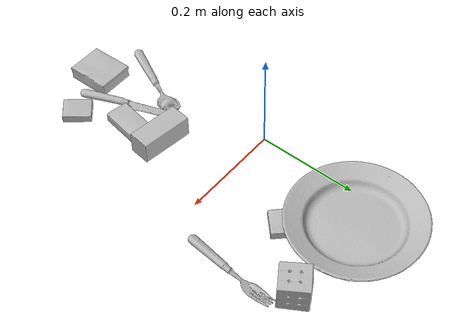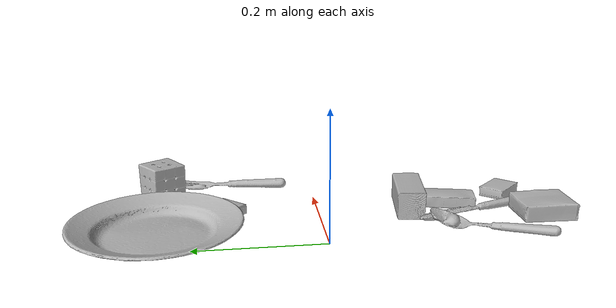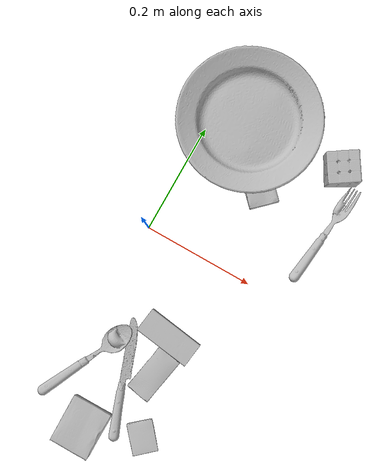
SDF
<sdf version="1.4">
  <world name="default">
    <light name="light1" type="point">
      <pose>0 0 1 0 0 0</pose>
      <diffuse>3 3 3 1</diffuse>
      <specular>3 3 3 1</specular>
    </light>
    <light name="light2" type="point">
      <pose>0 0.5 2 0 0 0</pose>
      <diffuse>1 1 1 1</diffuse>
      <specular>1 1 1 1</specular>
    </light>
    <light name="light3" type="point">
      <pose>0 0.5 2 0 0 0</pose>
      <diffuse>3 3 3 1</diffuse>
      <specular>3 3 3 1</specular>
    </light>
    <scene>
      <ambient>0.7 0.7 0.7</ambient>
    </scene>
    <model name="box11">
      <link name="link_box11">
        <collision name="default">
          <geometry>
            <mesh>
              <uri>model://gelatin_box/collision_meshes/collision.obj</uri>
              <scale>1.0 1.0 1.0</scale>
            </mesh>
          </geometry>
          <surface>
            <friction>
              <ode>
                <mu>0.5</mu>
                <mu2>0.5</mu2>
              </ode>
            </friction>
          <contact>
        <ode>
            <max_vel>0</max_vel>
            <min_depth>0.0001</min_depth>
            <kp>1e8</kp>
        </ode>
    </contact></surface>
        </collision>
        <visual name="default">
          <geometry>
            <mesh>
              <uri>model://gelatin_box/visual_meshes/visual.dae</uri>
              <scale>1.0 1.0 1.0</scale>
            </mesh>
          </geometry>
        </visual>
        <inertial>
          <mass>0.25029057264328003</mass>
          <pose>0.0004319618456065655 0.00011156871914863586 -0.0003640321083366871 -0.0010503719874808634 -0.004755820553863559 0.01644055760983946</pose>
          <inertia>
            <ixx>0.00017668474</ixx>
            <iyy>0.000126205</iyy>
            <izz>0.00026895347</izz>
            <ixy>0</ixy>
            <ixz>0</ixz>
            <iyz>0</iyz>
          </inertia>
        </inertial>
      </link>
      <pose>0.07121831923723221 -0.3551808297634125 0.015168309211730957 0.005597611272409825 -0.007304879815938372 0.0001245950178350865</pose>
    </model>
    <model name="box12">
      <link name="link_box12">
        <collision name="default">
          <geometry>
            <mesh>
              <uri>model://rubiks_cube/collision_meshes/collision.obj</uri>
              <scale>1.0 1.0 1.0</scale>
            </mesh>
          </geometry>
          <surface>
            <friction>
              <ode>
                <mu>0.5</mu>
                <mu2>0.5</mu2>
              </ode>
            </friction>
          <contact>
        <ode>
            <max_vel>0</max_vel>
            <min_depth>0.0001</min_depth>
            <kp>1e8</kp>
        </ode>
    </contact></surface>
        </collision>
        <visual name="default">
          <geometry>
            <mesh>
              <uri>model://rubiks_cube/visual_meshes/visual.dae</uri>
              <scale>1.0 1.0 1.0</scale>
            </mesh>
          </geometry>
        </visual>
        <inertial>
          <mass>0.21638615429401398</mass>
          <pose>2.6721043468569405e-05 5.2569666877388954e-05 -7.264316536748083e-06 -0.054671974778446215 -0.0981397652693683 -0.03445575269454635</pose>
          <inertia>
            <ixx>0.00011956789</ixx>
            <iyy>0.00011901029</iyy>
            <izz>0.00012055871</izz>
            <ixy>0</ixy>
            <ixz>0</ixz>
            <iyz>0</iyz>
          </inertia>
        </inertial>
      </link>
      <pose>0.2422572523355484 0.25285544991493225 0.028678951784968376 -4.684141554466599e-06 -2.0046161896678715e-06 0.565107407930676</pose>
    </model>
    <model name="box13">
      <link name="link_box13">
        <collision name="default">
          <geometry>
            <mesh>
              <uri>model://pudding_box/collision_meshes/collision.obj</uri>
              <scale>0.5 0.5 0.5</scale>
            </mesh>
          </geometry>
          <surface>
            <friction>
              <ode>
                <mu>0.5</mu>
                <mu2>0.5</mu2>
              </ode>
            </friction>
          <contact>
        <ode>
            <max_vel>0</max_vel>
            <min_depth>0.0001</min_depth>
            <kp>1e8</kp>
        </ode>
    </contact></surface>
        </collision>
        <visual name="default">
          <geometry>
            <mesh>
              <uri>model://pudding_box/visual_meshes/visual.dae</uri>
              <scale>0.5 0.5 0.5</scale>
            </mesh>
          </geometry>
        </visual>
        <inertial>
          <mass>0.024692855775356293</mass>
          <pose>0.00024474109522998333 0.00040339428232982755 -0.0002594413817860186 0.005213102294063647 -0.006603794537377036 0.020079827031592012</pose>
          <inertia>
            <ixx>6.9785e-06</ixx>
            <iyy>4.695185e-06</iyy>
            <izz>1.030558e-05</izz>
            <ixy>0</ixy>
            <ixz>0</ixz>
            <iyz>0</iyz>
          </inertia>
        </inertial>
      </link>
      <pose>0.17162658274173737 -0.31859615445137024 0.009862900711596012 0.02234870429398676 -0.011391591841182385 -2.4171722615806144</pose>
    </model>
    <model name="box21">
      <link name="link_box21">
        <collision name="default">
          <geometry>
            <mesh>
              <uri>model://wood_block/collision_meshes/collision.obj</uri>
              <scale>0.5 0.5 0.5</scale>
            </mesh>
          </geometry>
          <surface>
            <friction>
              <ode>
                <mu>0.5</mu>
                <mu2>0.5</mu2>
              </ode>
            </friction>
          <contact>
        <ode>
            <max_vel>0</max_vel>
            <min_depth>0.0001</min_depth>
            <kp>1e8</kp>
        </ode>
    </contact></surface>
        </collision>
        <visual name="default">
          <geometry>
            <mesh>
              <uri>model://wood_block/visual_meshes/visual.dae</uri>
              <scale>0.5 0.5 0.5</scale>
            </mesh>
          </geometry>
        </visual>
        <inertial>
          <mass>0.2621258497238159</mass>
          <pose>-2.9066577553749084e-06 -0.000285404734313488 0.00013204291462898254 -0.05220799390803197 -0.005192696360797016 -0.006861376940793837</pose>
          <inertia>
            <ixx>8.7691005e-05</ixx>
            <iyy>0.00027701593</iyy>
            <izz>0.00027597975</izz>
            <ixy>0</ixy>
            <ixz>0</ixz>
            <iyz>0</iyz>
          </inertia>
        </inertial>
      </link>
      <pose>0.12600530683994293 -0.147388756275177 0.022629251703619957 -0.005208465032457759 0.005718696916554369 3.00949142719674</pose>
    </model>
    <model name="box22">
      <link name="link_box22">
        <collision name="default">
          <geometry>
            <mesh>
              <uri>model://cracker_box/collision_meshes/collision.obj</uri>
              <scale>0.25 0.25 0.25</scale>
            </mesh>
          </geometry>
          <surface>
            <friction>
              <ode>
                <mu>0.5</mu>
                <mu2>0.5</mu2>
              </ode>
            </friction>
          <contact>
        <ode>
            <max_vel>0</max_vel>
            <min_depth>0.0001</min_depth>
            <kp>1e8</kp>
        </ode>
    </contact></surface>
        </collision>
        <visual name="default">
          <geometry>
            <mesh>
              <uri>model://cracker_box/visual_meshes/visual.dae</uri>
              <scale>0.25 0.25 0.25</scale>
            </mesh>
          </geometry>
        </visual>
        <inertial>
          <mass>0.04544714838266373</mass>
          <pose>0.0002366049593547359 6.358561950037256e-05 -0.0004257383698131889 -0.0003162075981767565 -0.011106493326025165 0.0025467940711340945</pose>
          <inertia>
            <ixx>7.224829e-06</ixx>
            <iyy>1.1929612e-05</iyy>
            <izz>1.702465e-05</izz>
            <ixy>0</ixy>
            <ixz>0</ixz>
            <iyz>0</iyz>
          </inertia>
        </inertial>
      </link>
      <pose>0.14295221865177155 0.14754171669483185 0.009120446629822254 -0.011787943372105952 -0.007367082123276877 -2.3711047113930133</pose>
    </model>
    <model name="box23">
      <link name="link_box23">
        <collision name="default">
          <geometry>
            <mesh>
              <uri>model://sugar_box/collision_meshes/collision.obj</uri>
              <scale>0.5 0.5 0.5</scale>
            </mesh>
          </geometry>
          <surface>
            <friction>
              <ode>
                <mu>0.5</mu>
                <mu2>0.5</mu2>
              </ode>
            </friction>
          <contact>
        <ode>
            <max_vel>0</max_vel>
            <min_depth>0.0001</min_depth>
            <kp>1e8</kp>
        </ode>
    </contact></surface>
        </collision>
        <visual name="default">
          <geometry>
            <mesh>
              <uri>model://sugar_box/visual_meshes/visual.dae</uri>
              <scale>0.5 0.5 0.5</scale>
            </mesh>
          </geometry>
        </visual>
        <inertial>
          <mass>0.08974423259496689</mass>
          <pose>0.0005171863595023751 1.924554817378521e-05 -0.00018182402709499002 -0.00040462647498757867 0.0010506636387592515 0.0026153785559760484</pose>
          <inertia>
            <ixx>1.869366e-05</ixx>
            <iyy>6.0421757e-05</iyy>
            <izz>7.233205e-05</izz>
            <ixy>0</ixy>
            <ixz>0</ixz>
            <iyz>0</iyz>
          </inertia>
        </inertial>
      </link>
      <pose>0.1344732642173767 -0.2159564197063446 0.011399304494261742 0.0007753015346033103 -0.023432649330163972 1.3870400030626533</pose>
    </model>
    <model name="plate1">
      <link name="link_plate1">
        <collision name="default">
          <geometry>
            <mesh>
              <uri>model://plate/collision_meshes/collision.obj</uri>
              <scale>1.0 1.0 1.0</scale>
            </mesh>
          </geometry>
          <surface>
            <friction>
              <ode>
                <mu>0.5</mu>
                <mu2>0.5</mu2>
              </ode>
            </friction>
          <contact>
        <ode>
            <max_vel>0</max_vel>
            <min_depth>0.0001</min_depth>
            <kp>1e8</kp>
        </ode>
    </contact></surface>
        </collision>
        <visual name="default">
          <geometry>
            <mesh>
              <uri>model://plate/visual_meshes/visual.dae</uri>
              <scale>1.0 1.0 1.0</scale>
            </mesh>
          </geometry>
        </visual>
        <inertial>
          <mass>0.25075921416282654</mass>
          <pose>-0.0006044597248546779 0.00027825814322568476 -0.0010562010575085878 0.0022187872861569474 -0.003225478732834207 0.4526086398584511</pose>
          <inertia>
            <ixx>0.0011730565</ixx>
            <iyy>0.0011618367</iyy>
            <izz>0.0022943232</izz>
            <ixy>0</ixy>
            <ixz>0</ixz>
            <iyz>0</iyz>
          </inertia>
        </inertial>
      </link>
      <pose>0.06052426993846893 0.2510109841823578 0.013733002357184887 4.025603811625604e-09 9.207740962575768e-10 -0.9191679218143533</pose>
    </model>
    <model name="silverware1">
      <link name="link_silverware1">
        <collision name="default">
          <geometry>
            <mesh>
              <uri>model://spoon/collision_meshes/collision.obj</uri>
              <scale>1.0 1.0 1.0</scale>
            </mesh>
          </geometry>
          <surface>
            <friction>
              <ode>
                <mu>0.5</mu>
                <mu2>0.5</mu2>
              </ode>
            </friction>
          <contact>
        <ode>
            <max_vel>0</max_vel>
            <min_depth>0.0001</min_depth>
            <kp>1e8</kp>
        </ode>
    </contact></surface>
        </collision>
        <visual name="default">
          <geometry>
            <mesh>
              <uri>model://spoon/visual_meshes/visual.dae</uri>
              <scale>1.0 1.0 1.0</scale>
            </mesh>
          </geometry>
        </visual>
        <inertial>
          <mass>0.036317918449640274</mass>
          <pose>-0.005526306107640266 -0.0016034167492762208 -0.0007271648501046002 0.03521625205726148 -0.039065835985121374 0.0061506181118877856</pose>
          <inertia>
            <ixx>2.0200612e-06</ixx>
            <iyy>0.00013818844</iyy>
            <izz>0.00013918467</izz>
            <ixy>0</ixy>
            <ixz>0</ixz>
            <iyz>0</iyz>
          </inertia>
        </inertial>
      </link>
      <pose>0.019151438027620316 -0.2526433765888214 0.008286136202514172 -0.1647396560238451 0.023920989710305006 1.1164074073360832</pose>
    </model>
    <model name="silverware2">
      <link name="link_silverware2">
        <collision name="default">
          <geometry>
            <mesh>
              <uri>model://knife/collision_meshes/collision.obj</uri>
              <scale>1.0 1.0 1.0</scale>
            </mesh>
          </geometry>
          <surface>
            <friction>
              <ode>
                <mu>0.5</mu>
                <mu2>0.5</mu2>
              </ode>
            </friction>
          <contact>
        <ode>
            <max_vel>0</max_vel>
            <min_depth>0.0001</min_depth>
            <kp>1e8</kp>
        </ode>
    </contact></surface>
        </collision>
        <visual name="default">
          <geometry>
            <mesh>
              <uri>model://knife/visual_meshes/visual.dae</uri>
              <scale>1.0 1.0 1.0</scale>
            </mesh>
          </geometry>
        </visual>
        <inertial>
          <mass>0.03166225552558899</mass>
          <pose>-0.02378525584936142 0.0015275123296305537 5.0620161346159875e-05 0.07305183970819301 0.01724842094470774 -0.007409827313526415</pose>
          <inertia>
            <ixx>8.9870355e-07</ixx>
            <iyy>0.00012164128</iyy>
            <izz>0.00012193073</izz>
            <ixy>0</ixy>
            <ixz>0</ixz>
            <iyz>0</iyz>
          </inertia>
        </inertial>
      </link>
      <pose>0.09536875784397125 -0.24930018186569214 0.007946625351905823 -0.01357763701541698 -0.014490110449255762 1.914323614415675</pose>
    </model>
    <model name="silverware3">
      <link name="link_silverware3">
        <collision name="default">
          <geometry>
            <mesh>
              <uri>model://fork/collision_meshes/collision.obj</uri>
              <scale>1.0 1.0 1.0</scale>
            </mesh>
          </geometry>
          <surface>
            <friction>
              <ode>
                <mu>0.5</mu>
                <mu2>0.5</mu2>
              </ode>
            </friction>
          <contact>
        <ode>
            <max_vel>0</max_vel>
            <min_depth>0.0001</min_depth>
            <kp>1e8</kp>
        </ode>
    </contact></surface>
        </collision>
        <visual name="default">
          <geometry>
            <mesh>
              <uri>model://fork/visual_meshes/visual.dae</uri>
              <scale>1.0 1.0 1.0</scale>
            </mesh>
          </geometry>
        </visual>
        <inertial>
          <mass>0.03018845245242119</mass>
          <pose>-0.029570050537586212 0.00046588227269239724 0.00032188609475269914 -0.013551782414775644 -0.010977841906558662 0.014453907874592884</pose>
          <inertia>
            <ixx>1.0582761e-06</ixx>
            <iyy>7.881335e-05</iyy>
            <izz>7.928668e-05</izz>
            <ixy>0</ixy>
            <ixz>0</ixz>
            <iyz>0</iyz>
          </inertia>
        </inertial>
      </link>
      <pose>0.2735995650291443 0.13927090167999268 0.0057402970269322395 -0.1870780279432903 0.024325837031965447 1.4551463916073644</pose>
    </model>
  <physics type="ode">
      <max_contacts>50</max_contacts>
      <ode>
        <solver>
          <type>quick</type>
          <iters>75</iters>
        </solver>
        <constraints>
          <contact_max_correcting_vel>0</contact_max_correcting_vel>
          <contact_surface_layer>0</contact_surface_layer>
        </constraints>
      </ode>
    </physics></world>
</sdf>
